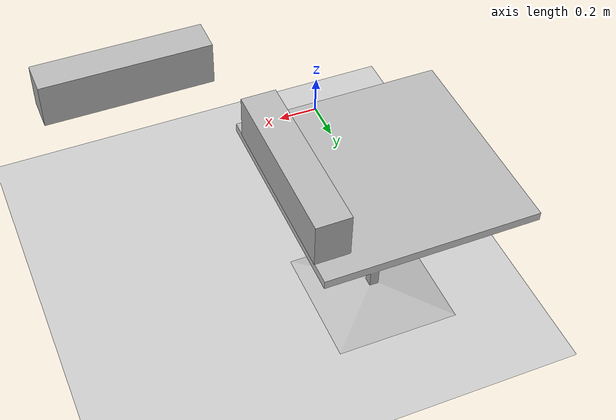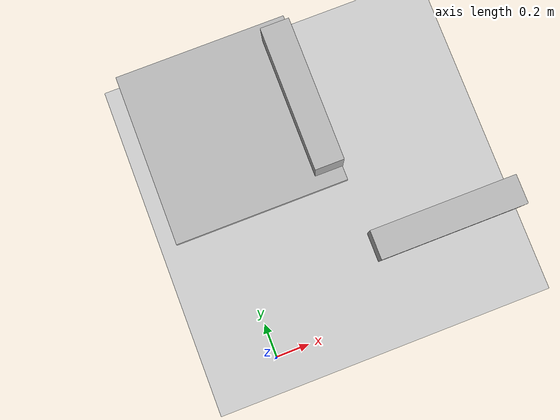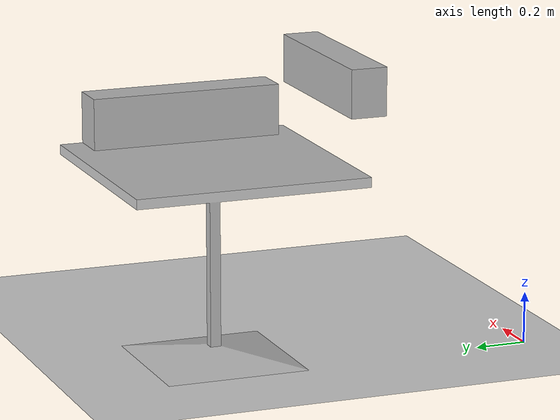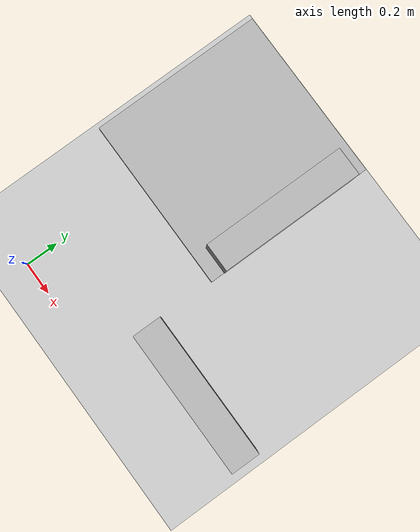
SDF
<sdf version="1.6">
 <world name="default">
  <model name="ground_plane">
   <static>1</static>
   <link name="link">
    <collision name="collision">
     <geometry><plane><normal>0 0 1</normal><size>100 100</size></plane></geometry>
     <surface><friction><ode><mu>100</mu><mu2>50</mu2></ode></friction></surface>
    </collision>
    <visual name="visual">
     <cast_shadows>0</cast_shadows>
     <geometry><plane><normal>0 0 1</normal><size>100 100</size></plane></geometry>
     <material>
      <script><uri>file://media/materials/scripts/gazebo.material</uri><name>Gazebo/Grey</name></script>
     </material>
    </visual>
   </link>
  </model>
  <model name="cafe_table1">
   <static>1</static>
   <link name="link">
    <collision name="surface">
     <pose>0 0 0.755 0 -0 0</pose>
     <geometry><box><size>0.913 0.913 0.04</size></box></geometry>
    </collision>
    <collision name="column">
     <pose>0 0 0.37 0 -0 0</pose>
     <geometry><box><size>0.042 0.042 0.74</size></box></geometry>
    </collision>
    <collision name="base">
     <pose>0 0 0.02 0 -0 0</pose>
     <geometry><box><size>0.56 0.56 0.04</size></box></geometry>
    </collision>
    <visual name="visual">
     <geometry><mesh><uri>model://cafe_table/meshes/cafe_table.dae</uri><scale>1 1 1</scale></mesh></geometry>
    </visual>
   </link>
   <pose>0.24 1.19 0 0 -0 0</pose>
  </model>
  <model name="block1">
   <link name="block1">
    <inertial>
     <pose>0 0 -0.017 0 -0 0</pose>
     <mass>2.5</mass>
     <inertia><ixx>2.5</ixx><ixy>0</ixy><ixz>0</ixz><iyy>2.5</iyy><iyz>0</iyz><izz>2.5</izz></inertia>
    </inertial>
    <collision name="block1_collision">
     <pose>0 0 -0.017 0 -0 0</pose>
     <geometry><box><size>0.15 0.75 0.2</size></box></geometry>
    </collision>
    <visual name="block1_visual">
     <pose>0 0 -0.017 0 -0 0</pose>
     <geometry><box><size>0.15 0.75 0.2</size></box></geometry>
    </visual>
   </link>
   <pose>0.624727 1.18147 0.892 0 2e-06 0</pose>
  </model>
  <model name="block2">
   <link name="block2">
    <inertial>
     <pose>0 0 -0.017 0 -0 0</pose>
     <mass>2.5</mass>
     <inertia><ixx>2.5</ixx><ixy>0</ixy><ixz>0</ixz><iyy>2.5</iyy><iyz>0</iyz><izz>2.5</izz></inertia>
    </inertial>
    <collision name="block2_collision">
     <pose>0 0 -0.017 0 -0 0</pose>
     <geometry><box><size>0.75 0.15 0.2</size></box></geometry>
    </collision>
    <visual name="block2_visual">
     <pose>0 0 -0.017 0 -0 0</pose>
     <geometry><box><size>0.75 0.15 0.2</size></box></geometry>
    </visual>
   </link>
   <pose>1.06339 0.368855 0.892001 -1.2e-05 0 0</pose>
  </model>
 </world>
</sdf>
